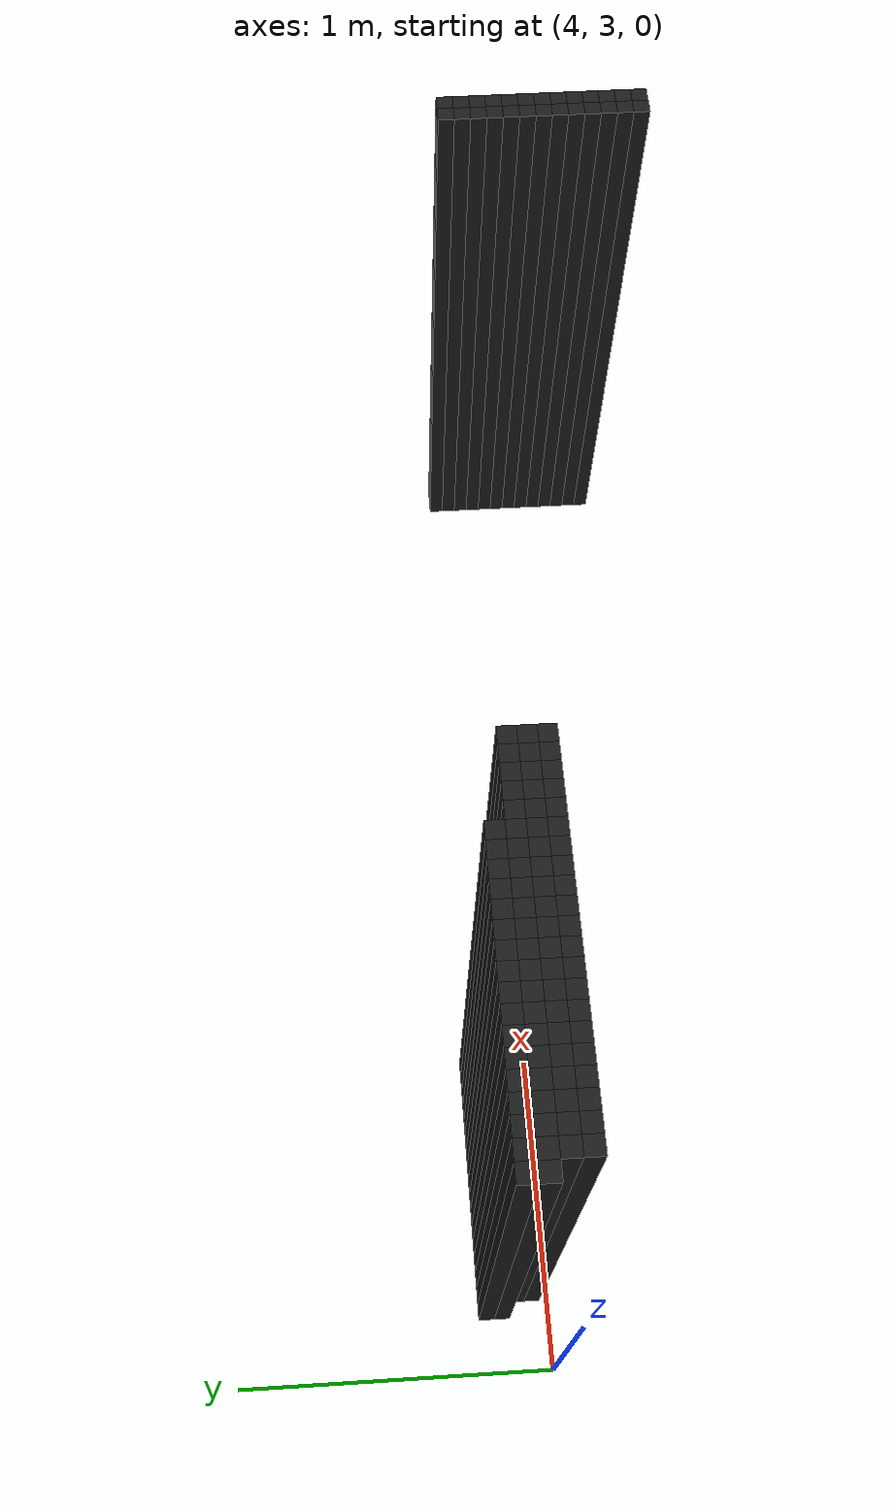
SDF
<sdf version="1.6">
 <model name="obstacle_174_103">
  <pose>4.190000000000001 3.2 1.0 0 0 0</pose>
  <static>true</static>
  <link name="box_link">
   <collision name="box_collision"><geometry><box><size>0.05 0.05 2.0</size></box></geometry></collision>
   <visual name="box_visual">
    <geometry><box><size>0.05 0.05 2.0</size></box></geometry>
    <material><ambient>0 0 0 1</ambient><diffuse>0.1 0.1 0.1 1</diffuse></material>
   </visual>
  </link>
 </model>
 <model name="obstacle_175_103">
  <pose>4.24 3.2 1.0 0 0 0</pose>
  <static>true</static>
  <link name="box_link">
   <collision name="box_collision"><geometry><box><size>0.05 0.05 2.0</size></box></geometry></collision>
   <visual name="box_visual">
    <geometry><box><size>0.05 0.05 2.0</size></box></geometry>
    <material><ambient>0 0 0 1</ambient><diffuse>0.1 0.1 0.1 1</diffuse></material>
   </visual>
  </link>
 </model>
 <model name="obstacle_176_103">
  <pose>4.290000000000001 3.2 1.0 0 0 0</pose>
  <static>true</static>
  <link name="box_link">
   <collision name="box_collision"><geometry><box><size>0.05 0.05 2.0</size></box></geometry></collision>
   <visual name="box_visual">
    <geometry><box><size>0.05 0.05 2.0</size></box></geometry>
    <material><ambient>0 0 0 1</ambient><diffuse>0.1 0.1 0.1 1</diffuse></material>
   </visual>
  </link>
 </model>
 <model name="obstacle_177_103">
  <pose>4.34 3.2 1.0 0 0 0</pose>
  <static>true</static>
  <link name="box_link">
   <collision name="box_collision"><geometry><box><size>0.05 0.05 2.0</size></box></geometry></collision>
   <visual name="box_visual">
    <geometry><box><size>0.05 0.05 2.0</size></box></geometry>
    <material><ambient>0 0 0 1</ambient><diffuse>0.1 0.1 0.1 1</diffuse></material>
   </visual>
  </link>
 </model>
 <model name="obstacle_178_103">
  <pose>4.390000000000001 3.2 1.0 0 0 0</pose>
  <static>true</static>
  <link name="box_link">
   <collision name="box_collision"><geometry><box><size>0.05 0.05 2.0</size></box></geometry></collision>
   <visual name="box_visual">
    <geometry><box><size>0.05 0.05 2.0</size></box></geometry>
    <material><ambient>0 0 0 1</ambient><diffuse>0.1 0.1 0.1 1</diffuse></material>
   </visual>
  </link>
 </model>
 <model name="obstacle_179_103">
  <pose>4.440000000000001 3.2 1.0 0 0 0</pose>
  <static>true</static>
  <link name="box_link">
   <collision name="box_collision"><geometry><box><size>0.05 0.05 2.0</size></box></geometry></collision>
   <visual name="box_visual">
    <geometry><box><size>0.05 0.05 2.0</size></box></geometry>
    <material><ambient>0 0 0 1</ambient><diffuse>0.1 0.1 0.1 1</diffuse></material>
   </visual>
  </link>
 </model>
 <model name="obstacle_180_103">
  <pose>4.49 3.2 1.0 0 0 0</pose>
  <static>true</static>
  <link name="box_link">
   <collision name="box_collision"><geometry><box><size>0.05 0.05 2.0</size></box></geometry></collision>
   <visual name="box_visual">
    <geometry><box><size>0.05 0.05 2.0</size></box></geometry>
    <material><ambient>0 0 0 1</ambient><diffuse>0.1 0.1 0.1 1</diffuse></material>
   </visual>
  </link>
 </model>
 <model name="obstacle_181_103">
  <pose>4.540000000000001 3.2 1.0 0 0 0</pose>
  <static>true</static>
  <link name="box_link">
   <collision name="box_collision"><geometry><box><size>0.05 0.05 2.0</size></box></geometry></collision>
   <visual name="box_visual">
    <geometry><box><size>0.05 0.05 2.0</size></box></geometry>
    <material><ambient>0 0 0 1</ambient><diffuse>0.1 0.1 0.1 1</diffuse></material>
   </visual>
  </link>
 </model>
 <model name="obstacle_182_103">
  <pose>4.59 3.2 1.0 0 0 0</pose>
  <static>true</static>
  <link name="box_link">
   <collision name="box_collision"><geometry><box><size>0.05 0.05 2.0</size></box></geometry></collision>
   <visual name="box_visual">
    <geometry><box><size>0.05 0.05 2.0</size></box></geometry>
    <material><ambient>0 0 0 1</ambient><diffuse>0.1 0.1 0.1 1</diffuse></material>
   </visual>
  </link>
 </model>
 <model name="obstacle_183_103">
  <pose>4.640000000000001 3.2 1.0 0 0 0</pose>
  <static>true</static>
  <link name="box_link">
   <collision name="box_collision"><geometry><box><size>0.05 0.05 2.0</size></box></geometry></collision>
   <visual name="box_visual">
    <geometry><box><size>0.05 0.05 2.0</size></box></geometry>
    <material><ambient>0 0 0 1</ambient><diffuse>0.1 0.1 0.1 1</diffuse></material>
   </visual>
  </link>
 </model>
 <model name="obstacle_184_103">
  <pose>4.690000000000001 3.2 1.0 0 0 0</pose>
  <static>true</static>
  <link name="box_link">
   <collision name="box_collision"><geometry><box><size>0.05 0.05 2.0</size></box></geometry></collision>
   <visual name="box_visual">
    <geometry><box><size>0.05 0.05 2.0</size></box></geometry>
    <material><ambient>0 0 0 1</ambient><diffuse>0.1 0.1 0.1 1</diffuse></material>
   </visual>
  </link>
 </model>
 <model name="obstacle_185_103">
  <pose>4.74 3.2 1.0 0 0 0</pose>
  <static>true</static>
  <link name="box_link">
   <collision name="box_collision"><geometry><box><size>0.05 0.05 2.0</size></box></geometry></collision>
   <visual name="box_visual">
    <geometry><box><size>0.05 0.05 2.0</size></box></geometry>
    <material><ambient>0 0 0 1</ambient><diffuse>0.1 0.1 0.1 1</diffuse></material>
   </visual>
  </link>
 </model>
 <model name="obstacle_186_103">
  <pose>4.790000000000001 3.2 1.0 0 0 0</pose>
  <static>true</static>
  <link name="box_link">
   <collision name="box_collision"><geometry><box><size>0.05 0.05 2.0</size></box></geometry></collision>
   <visual name="box_visual">
    <geometry><box><size>0.05 0.05 2.0</size></box></geometry>
    <material><ambient>0 0 0 1</ambient><diffuse>0.1 0.1 0.1 1</diffuse></material>
   </visual>
  </link>
 </model>
 <model name="obstacle_187_103">
  <pose>4.84 3.2 1.0 0 0 0</pose>
  <static>true</static>
  <link name="box_link">
   <collision name="box_collision"><geometry><box><size>0.05 0.05 2.0</size></box></geometry></collision>
   <visual name="box_visual">
    <geometry><box><size>0.05 0.05 2.0</size></box></geometry>
    <material><ambient>0 0 0 1</ambient><diffuse>0.1 0.1 0.1 1</diffuse></material>
   </visual>
  </link>
 </model>
 <model name="obstacle_188_103">
  <pose>4.890000000000001 3.2 1.0 0 0 0</pose>
  <static>true</static>
  <link name="box_link">
   <collision name="box_collision"><geometry><box><size>0.05 0.05 2.0</size></box></geometry></collision>
   <visual name="box_visual">
    <geometry><box><size>0.05 0.05 2.0</size></box></geometry>
    <material><ambient>0 0 0 1</ambient><diffuse>0.1 0.1 0.1 1</diffuse></material>
   </visual>
  </link>
 </model>
 <model name="obstacle_189_103">
  <pose>4.940000000000001 3.2 1.0 0 0 0</pose>
  <static>true</static>
  <link name="box_link">
   <collision name="box_collision"><geometry><box><size>0.05 0.05 2.0</size></box></geometry></collision>
   <visual name="box_visual">
    <geometry><box><size>0.05 0.05 2.0</size></box></geometry>
    <material><ambient>0 0 0 1</ambient><diffuse>0.1 0.1 0.1 1</diffuse></material>
   </visual>
  </link>
 </model>
 <model name="obstacle_190_103">
  <pose>4.99 3.2 1.0 0 0 0</pose>
  <static>true</static>
  <link name="box_link">
   <collision name="box_collision"><geometry><box><size>0.05 0.05 2.0</size></box></geometry></collision>
   <visual name="box_visual">
    <geometry><box><size>0.05 0.05 2.0</size></box></geometry>
    <material><ambient>0 0 0 1</ambient><diffuse>0.1 0.1 0.1 1</diffuse></material>
   </visual>
  </link>
 </model>
 <model name="obstacle_174_104">
  <pose>4.190000000000001 3.1500000000000004 1.0 0 0 0</pose>
  <static>true</static>
  <link name="box_link">
   <collision name="box_collision"><geometry><box><size>0.05 0.05 2.0</size></box></geometry></collision>
   <visual name="box_visual">
    <geometry><box><size>0.05 0.05 2.0</size></box></geometry>
    <material><ambient>0 0 0 1</ambient><diffuse>0.1 0.1 0.1 1</diffuse></material>
   </visual>
  </link>
 </model>
 <model name="obstacle_175_104">
  <pose>4.24 3.1500000000000004 1.0 0 0 0</pose>
  <static>true</static>
  <link name="box_link">
   <collision name="box_collision"><geometry><box><size>0.05 0.05 2.0</size></box></geometry></collision>
   <visual name="box_visual">
    <geometry><box><size>0.05 0.05 2.0</size></box></geometry>
    <material><ambient>0 0 0 1</ambient><diffuse>0.1 0.1 0.1 1</diffuse></material>
   </visual>
  </link>
 </model>
 <model name="obstacle_176_104">
  <pose>4.290000000000001 3.1500000000000004 1.0 0 0 0</pose>
  <static>true</static>
  <link name="box_link">
   <collision name="box_collision"><geometry><box><size>0.05 0.05 2.0</size></box></geometry></collision>
   <visual name="box_visual">
    <geometry><box><size>0.05 0.05 2.0</size></box></geometry>
    <material><ambient>0 0 0 1</ambient><diffuse>0.1 0.1 0.1 1</diffuse></material>
   </visual>
  </link>
 </model>
 <model name="obstacle_177_104">
  <pose>4.34 3.1500000000000004 1.0 0 0 0</pose>
  <static>true</static>
  <link name="box_link">
   <collision name="box_collision"><geometry><box><size>0.05 0.05 2.0</size></box></geometry></collision>
   <visual name="box_visual">
    <geometry><box><size>0.05 0.05 2.0</size></box></geometry>
    <material><ambient>0 0 0 1</ambient><diffuse>0.1 0.1 0.1 1</diffuse></material>
   </visual>
  </link>
 </model>
 <model name="obstacle_178_104">
  <pose>4.390000000000001 3.1500000000000004 1.0 0 0 0</pose>
  <static>true</static>
  <link name="box_link">
   <collision name="box_collision"><geometry><box><size>0.05 0.05 2.0</size></box></geometry></collision>
   <visual name="box_visual">
    <geometry><box><size>0.05 0.05 2.0</size></box></geometry>
    <material><ambient>0 0 0 1</ambient><diffuse>0.1 0.1 0.1 1</diffuse></material>
   </visual>
  </link>
 </model>
 <model name="obstacle_179_104">
  <pose>4.440000000000001 3.1500000000000004 1.0 0 0 0</pose>
  <static>true</static>
  <link name="box_link">
   <collision name="box_collision"><geometry><box><size>0.05 0.05 2.0</size></box></geometry></collision>
   <visual name="box_visual">
    <geometry><box><size>0.05 0.05 2.0</size></box></geometry>
    <material><ambient>0 0 0 1</ambient><diffuse>0.1 0.1 0.1 1</diffuse></material>
   </visual>
  </link>
 </model>
 <model name="obstacle_180_104">
  <pose>4.49 3.1500000000000004 1.0 0 0 0</pose>
  <static>true</static>
  <link name="box_link">
   <collision name="box_collision"><geometry><box><size>0.05 0.05 2.0</size></box></geometry></collision>
   <visual name="box_visual">
    <geometry><box><size>0.05 0.05 2.0</size></box></geometry>
    <material><ambient>0 0 0 1</ambient><diffuse>0.1 0.1 0.1 1</diffuse></material>
   </visual>
  </link>
 </model>
 <model name="obstacle_181_104">
  <pose>4.540000000000001 3.1500000000000004 1.0 0 0 0</pose>
  <static>true</static>
  <link name="box_link">
   <collision name="box_collision"><geometry><box><size>0.05 0.05 2.0</size></box></geometry></collision>
   <visual name="box_visual">
    <geometry><box><size>0.05 0.05 2.0</size></box></geometry>
    <material><ambient>0 0 0 1</ambient><diffuse>0.1 0.1 0.1 1</diffuse></material>
   </visual>
  </link>
 </model>
 <model name="obstacle_182_104">
  <pose>4.59 3.1500000000000004 1.0 0 0 0</pose>
  <static>true</static>
  <link name="box_link">
   <collision name="box_collision"><geometry><box><size>0.05 0.05 2.0</size></box></geometry></collision>
   <visual name="box_visual">
    <geometry><box><size>0.05 0.05 2.0</size></box></geometry>
    <material><ambient>0 0 0 1</ambient><diffuse>0.1 0.1 0.1 1</diffuse></material>
   </visual>
  </link>
 </model>
 <model name="obstacle_183_104">
  <pose>4.640000000000001 3.1500000000000004 1.0 0 0 0</pose>
  <static>true</static>
  <link name="box_link">
   <collision name="box_collision"><geometry><box><size>0.05 0.05 2.0</size></box></geometry></collision>
   <visual name="box_visual">
    <geometry><box><size>0.05 0.05 2.0</size></box></geometry>
    <material><ambient>0 0 0 1</ambient><diffuse>0.1 0.1 0.1 1</diffuse></material>
   </visual>
  </link>
 </model>
 <model name="obstacle_184_104">
  <pose>4.690000000000001 3.1500000000000004 1.0 0 0 0</pose>
  <static>true</static>
  <link name="box_link">
   <collision name="box_collision"><geometry><box><size>0.05 0.05 2.0</size></box></geometry></collision>
   <visual name="box_visual">
    <geometry><box><size>0.05 0.05 2.0</size></box></geometry>
    <material><ambient>0 0 0 1</ambient><diffuse>0.1 0.1 0.1 1</diffuse></material>
   </visual>
  </link>
 </model>
 <model name="obstacle_185_104">
  <pose>4.74 3.1500000000000004 1.0 0 0 0</pose>
  <static>true</static>
  <link name="box_link">
   <collision name="box_collision"><geometry><box><size>0.05 0.05 2.0</size></box></geometry></collision>
   <visual name="box_visual">
    <geometry><box><size>0.05 0.05 2.0</size></box></geometry>
    <material><ambient>0 0 0 1</ambient><diffuse>0.1 0.1 0.1 1</diffuse></material>
   </visual>
  </link>
 </model>
 <model name="obstacle_186_104">
  <pose>4.790000000000001 3.1500000000000004 1.0 0 0 0</pose>
  <static>true</static>
  <link name="box_link">
   <collision name="box_collision"><geometry><box><size>0.05 0.05 2.0</size></box></geometry></collision>
   <visual name="box_visual">
    <geometry><box><size>0.05 0.05 2.0</size></box></geometry>
    <material><ambient>0 0 0 1</ambient><diffuse>0.1 0.1 0.1 1</diffuse></material>
   </visual>
  </link>
 </model>
 <model name="obstacle_187_104">
  <pose>4.84 3.1500000000000004 1.0 0 0 0</pose>
  <static>true</static>
  <link name="box_link">
   <collision name="box_collision"><geometry><box><size>0.05 0.05 2.0</size></box></geometry></collision>
   <visual name="box_visual">
    <geometry><box><size>0.05 0.05 2.0</size></box></geometry>
    <material><ambient>0 0 0 1</ambient><diffuse>0.1 0.1 0.1 1</diffuse></material>
   </visual>
  </link>
 </model>
 <model name="obstacle_188_104">
  <pose>4.890000000000001 3.1500000000000004 1.0 0 0 0</pose>
  <static>true</static>
  <link name="box_link">
   <collision name="box_collision"><geometry><box><size>0.05 0.05 2.0</size></box></geometry></collision>
   <visual name="box_visual">
    <geometry><box><size>0.05 0.05 2.0</size></box></geometry>
    <material><ambient>0 0 0 1</ambient><diffuse>0.1 0.1 0.1 1</diffuse></material>
   </visual>
  </link>
 </model>
 <model name="obstacle_189_104">
  <pose>4.940000000000001 3.1500000000000004 1.0 0 0 0</pose>
  <static>true</static>
  <link name="box_link">
   <collision name="box_collision"><geometry><box><size>0.05 0.05 2.0</size></box></geometry></collision>
   <visual name="box_visual">
    <geometry><box><size>0.05 0.05 2.0</size></box></geometry>
    <material><ambient>0 0 0 1</ambient><diffuse>0.1 0.1 0.1 1</diffuse></material>
   </visual>
  </link>
 </model>
 <model name="obstacle_190_104">
  <pose>4.99 3.1500000000000004 1.0 0 0 0</pose>
  <static>true</static>
  <link name="box_link">
   <collision name="box_collision"><geometry><box><size>0.05 0.05 2.0</size></box></geometry></collision>
   <visual name="box_visual">
    <geometry><box><size>0.05 0.05 2.0</size></box></geometry>
    <material><ambient>0 0 0 1</ambient><diffuse>0.1 0.1 0.1 1</diffuse></material>
   </visual>
  </link>
 </model>
 <model name="obstacle_191_104">
  <pose>5.040000000000001 3.1500000000000004 1.0 0 0 0</pose>
  <static>true</static>
  <link name="box_link">
   <collision name="box_collision"><geometry><box><size>0.05 0.05 2.0</size></box></geometry></collision>
   <visual name="box_visual">
    <geometry><box><size>0.05 0.05 2.0</size></box></geometry>
    <material><ambient>0 0 0 1</ambient><diffuse>0.1 0.1 0.1 1</diffuse></material>
   </visual>
  </link>
 </model>
 <model name="obstacle_192_104">
  <pose>5.090000000000002 3.1500000000000004 1.0 0 0 0</pose>
  <static>true</static>
  <link name="box_link">
   <collision name="box_collision"><geometry><box><size>0.05 0.05 2.0</size></box></geometry></collision>
   <visual name="box_visual">
    <geometry><box><size>0.05 0.05 2.0</size></box></geometry>
    <material><ambient>0 0 0 1</ambient><diffuse>0.1 0.1 0.1 1</diffuse></material>
   </visual>
  </link>
 </model>
 <model name="obstacle_193_104">
  <pose>5.140000000000001 3.1500000000000004 1.0 0 0 0</pose>
  <static>true</static>
  <link name="box_link">
   <collision name="box_collision"><geometry><box><size>0.05 0.05 2.0</size></box></geometry></collision>
   <visual name="box_visual">
    <geometry><box><size>0.05 0.05 2.0</size></box></geometry>
    <material><ambient>0 0 0 1</ambient><diffuse>0.1 0.1 0.1 1</diffuse></material>
   </visual>
  </link>
 </model>
 <model name="obstacle_194_104">
  <pose>5.190000000000001 3.1500000000000004 1.0 0 0 0</pose>
  <static>true</static>
  <link name="box_link">
   <collision name="box_collision"><geometry><box><size>0.05 0.05 2.0</size></box></geometry></collision>
   <visual name="box_visual">
    <geometry><box><size>0.05 0.05 2.0</size></box></geometry>
    <material><ambient>0 0 0 1</ambient><diffuse>0.1 0.1 0.1 1</diffuse></material>
   </visual>
  </link>
 </model>
 <model name="obstacle_195_104">
  <pose>5.24 3.1500000000000004 1.0 0 0 0</pose>
  <static>true</static>
  <link name="box_link">
   <collision name="box_collision"><geometry><box><size>0.05 0.05 2.0</size></box></geometry></collision>
   <visual name="box_visual">
    <geometry><box><size>0.05 0.05 2.0</size></box></geometry>
    <material><ambient>0 0 0 1</ambient><diffuse>0.1 0.1 0.1 1</diffuse></material>
   </visual>
  </link>
 </model>
 <model name="obstacle_238_104">
  <pose>7.390000000000001 3.1500000000000004 1.0 0 0 0</pose>
  <static>true</static>
  <link name="box_link">
   <collision name="box_collision"><geometry><box><size>0.05 0.05 2.0</size></box></geometry></collision>
   <visual name="box_visual">
    <geometry><box><size>0.05 0.05 2.0</size></box></geometry>
    <material><ambient>0 0 0 1</ambient><diffuse>0.1 0.1 0.1 1</diffuse></material>
   </visual>
  </link>
 </model>
 <model name="obstacle_239_104">
  <pose>7.440000000000001 3.1500000000000004 1.0 0 0 0</pose>
  <static>true</static>
  <link name="box_link">
   <collision name="box_collision"><geometry><box><size>0.05 0.05 2.0</size></box></geometry></collision>
   <visual name="box_visual">
    <geometry><box><size>0.05 0.05 2.0</size></box></geometry>
    <material><ambient>0 0 0 1</ambient><diffuse>0.1 0.1 0.1 1</diffuse></material>
   </visual>
  </link>
 </model>
 <model name="obstacle_175_105">
  <pose>4.24 3.1000000000000005 1.0 0 0 0</pose>
  <static>true</static>
  <link name="box_link">
   <collision name="box_collision"><geometry><box><size>0.05 0.05 2.0</size></box></geometry></collision>
   <visual name="box_visual">
    <geometry><box><size>0.05 0.05 2.0</size></box></geometry>
    <material><ambient>0 0 0 1</ambient><diffuse>0.1 0.1 0.1 1</diffuse></material>
   </visual>
  </link>
 </model>
 <model name="obstacle_176_105">
  <pose>4.290000000000001 3.1000000000000005 1.0 0 0 0</pose>
  <static>true</static>
  <link name="box_link">
   <collision name="box_collision"><geometry><box><size>0.05 0.05 2.0</size></box></geometry></collision>
   <visual name="box_visual">
    <geometry><box><size>0.05 0.05 2.0</size></box></geometry>
    <material><ambient>0 0 0 1</ambient><diffuse>0.1 0.1 0.1 1</diffuse></material>
   </visual>
  </link>
 </model>
 <model name="obstacle_177_105">
  <pose>4.34 3.1000000000000005 1.0 0 0 0</pose>
  <static>true</static>
  <link name="box_link">
   <collision name="box_collision"><geometry><box><size>0.05 0.05 2.0</size></box></geometry></collision>
   <visual name="box_visual">
    <geometry><box><size>0.05 0.05 2.0</size></box></geometry>
    <material><ambient>0 0 0 1</ambient><diffuse>0.1 0.1 0.1 1</diffuse></material>
   </visual>
  </link>
 </model>
 <model name="obstacle_178_105">
  <pose>4.390000000000001 3.1000000000000005 1.0 0 0 0</pose>
  <static>true</static>
  <link name="box_link">
   <collision name="box_collision"><geometry><box><size>0.05 0.05 2.0</size></box></geometry></collision>
   <visual name="box_visual">
    <geometry><box><size>0.05 0.05 2.0</size></box></geometry>
    <material><ambient>0 0 0 1</ambient><diffuse>0.1 0.1 0.1 1</diffuse></material>
   </visual>
  </link>
 </model>
 <model name="obstacle_179_105">
  <pose>4.440000000000001 3.1000000000000005 1.0 0 0 0</pose>
  <static>true</static>
  <link name="box_link">
   <collision name="box_collision"><geometry><box><size>0.05 0.05 2.0</size></box></geometry></collision>
   <visual name="box_visual">
    <geometry><box><size>0.05 0.05 2.0</size></box></geometry>
    <material><ambient>0 0 0 1</ambient><diffuse>0.1 0.1 0.1 1</diffuse></material>
   </visual>
  </link>
 </model>
 <model name="obstacle_180_105">
  <pose>4.49 3.1000000000000005 1.0 0 0 0</pose>
  <static>true</static>
  <link name="box_link">
   <collision name="box_collision"><geometry><box><size>0.05 0.05 2.0</size></box></geometry></collision>
   <visual name="box_visual">
    <geometry><box><size>0.05 0.05 2.0</size></box></geometry>
    <material><ambient>0 0 0 1</ambient><diffuse>0.1 0.1 0.1 1</diffuse></material>
   </visual>
  </link>
 </model>
 <model name="obstacle_181_105">
  <pose>4.540000000000001 3.1000000000000005 1.0 0 0 0</pose>
  <static>true</static>
  <link name="box_link">
   <collision name="box_collision"><geometry><box><size>0.05 0.05 2.0</size></box></geometry></collision>
   <visual name="box_visual">
    <geometry><box><size>0.05 0.05 2.0</size></box></geometry>
    <material><ambient>0 0 0 1</ambient><diffuse>0.1 0.1 0.1 1</diffuse></material>
   </visual>
  </link>
 </model>
 <model name="obstacle_182_105">
  <pose>4.59 3.1000000000000005 1.0 0 0 0</pose>
  <static>true</static>
  <link name="box_link">
   <collision name="box_collision"><geometry><box><size>0.05 0.05 2.0</size></box></geometry></collision>
   <visual name="box_visual">
    <geometry><box><size>0.05 0.05 2.0</size></box></geometry>
    <material><ambient>0 0 0 1</ambient><diffuse>0.1 0.1 0.1 1</diffuse></material>
   </visual>
  </link>
 </model>
 <model name="obstacle_183_105">
  <pose>4.640000000000001 3.1000000000000005 1.0 0 0 0</pose>
  <static>true</static>
  <link name="box_link">
   <collision name="box_collision"><geometry><box><size>0.05 0.05 2.0</size></box></geometry></collision>
   <visual name="box_visual">
    <geometry><box><size>0.05 0.05 2.0</size></box></geometry>
    <material><ambient>0 0 0 1</ambient><diffuse>0.1 0.1 0.1 1</diffuse></material>
   </visual>
  </link>
 </model>
 <model name="obstacle_184_105">
  <pose>4.690000000000001 3.1000000000000005 1.0 0 0 0</pose>
  <static>true</static>
  <link name="box_link">
   <collision name="box_collision"><geometry><box><size>0.05 0.05 2.0</size></box></geometry></collision>
   <visual name="box_visual">
    <geometry><box><size>0.05 0.05 2.0</size></box></geometry>
    <material><ambient>0 0 0 1</ambient><diffuse>0.1 0.1 0.1 1</diffuse></material>
   </visual>
  </link>
 </model>
 <model name="obstacle_185_105">
  <pose>4.74 3.1000000000000005 1.0 0 0 0</pose>
  <static>true</static>
  <link name="box_link">
   <collision name="box_collision"><geometry><box><size>0.05 0.05 2.0</size></box></geometry></collision>
   <visual name="box_visual">
    <geometry><box><size>0.05 0.05 2.0</size></box></geometry>
    <material><ambient>0 0 0 1</ambient><diffuse>0.1 0.1 0.1 1</diffuse></material>
   </visual>
  </link>
 </model>
 <model name="obstacle_186_105">
  <pose>4.790000000000001 3.1000000000000005 1.0 0 0 0</pose>
  <static>true</static>
  <link name="box_link">
   <collision name="box_collision"><geometry><box><size>0.05 0.05 2.0</size></box></geometry></collision>
   <visual name="box_visual">
    <geometry><box><size>0.05 0.05 2.0</size></box></geometry>
    <material><ambient>0 0 0 1</ambient><diffuse>0.1 0.1 0.1 1</diffuse></material>
   </visual>
  </link>
 </model>
 <model name="obstacle_187_105">
  <pose>4.84 3.1000000000000005 1.0 0 0 0</pose>
  <static>true</static>
  <link name="box_link">
   <collision name="box_collision"><geometry><box><size>0.05 0.05 2.0</size></box></geometry></collision>
   <visual name="box_visual">
    <geometry><box><size>0.05 0.05 2.0</size></box></geometry>
    <material><ambient>0 0 0 1</ambient><diffuse>0.1 0.1 0.1 1</diffuse></material>
   </visual>
  </link>
 </model>
 <model name="obstacle_188_105">
  <pose>4.890000000000001 3.1000000000000005 1.0 0 0 0</pose>
  <static>true</static>
  <link name="box_link">
   <collision name="box_collision"><geometry><box><size>0.05 0.05 2.0</size></box></geometry></collision>
   <visual name="box_visual">
    <geometry><box><size>0.05 0.05 2.0</size></box></geometry>
    <material><ambient>0 0 0 1</ambient><diffuse>0.1 0.1 0.1 1</diffuse></material>
   </visual>
  </link>
 </model>
 <model name="obstacle_189_105">
  <pose>4.940000000000001 3.1000000000000005 1.0 0 0 0</pose>
  <static>true</static>
  <link name="box_link">
   <collision name="box_collision"><geometry><box><size>0.05 0.05 2.0</size></box></geometry></collision>
   <visual name="box_visual">
    <geometry><box><size>0.05 0.05 2.0</size></box></geometry>
    <material><ambient>0 0 0 1</ambient><diffuse>0.1 0.1 0.1 1</diffuse></material>
   </visual>
  </link>
 </model>
 <model name="obstacle_190_105">
  <pose>4.99 3.1000000000000005 1.0 0 0 0</pose>
  <static>true</static>
  <link name="box_link">
   <collision name="box_collision"><geometry><box><size>0.05 0.05 2.0</size></box></geometry></collision>
   <visual name="box_visual">
    <geometry><box><size>0.05 0.05 2.0</size></box></geometry>
    <material><ambient>0 0 0 1</ambient><diffuse>0.1 0.1 0.1 1</diffuse></material>
   </visual>
  </link>
 </model>
 <model name="obstacle_191_105">
  <pose>5.040000000000001 3.1000000000000005 1.0 0 0 0</pose>
  <static>true</static>
  <link name="box_link">
   <collision name="box_collision"><geometry><box><size>0.05 0.05 2.0</size></box></geometry></collision>
   <visual name="box_visual">
    <geometry><box><size>0.05 0.05 2.0</size></box></geometry>
    <material><ambient>0 0 0 1</ambient><diffuse>0.1 0.1 0.1 1</diffuse></material>
   </visual>
  </link>
 </model>
 <model name="obstacle_192_105">
  <pose>5.090000000000002 3.1000000000000005 1.0 0 0 0</pose>
  <static>true</static>
  <link name="box_link">
   <collision name="box_collision"><geometry><box><size>0.05 0.05 2.0</size></box></geometry></collision>
   <visual name="box_visual">
    <geometry><box><size>0.05 0.05 2.0</size></box></geometry>
    <material><ambient>0 0 0 1</ambient><diffuse>0.1 0.1 0.1 1</diffuse></material>
   </visual>
  </link>
 </model>
 <model name="obstacle_193_105">
  <pose>5.140000000000001 3.1000000000000005 1.0 0 0 0</pose>
  <static>true</static>
  <link name="box_link">
   <collision name="box_collision"><geometry><box><size>0.05 0.05 2.0</size></box></geometry></collision>
   <visual name="box_visual">
    <geometry><box><size>0.05 0.05 2.0</size></box></geometry>
    <material><ambient>0 0 0 1</ambient><diffuse>0.1 0.1 0.1 1</diffuse></material>
   </visual>
  </link>
 </model>
 <model name="obstacle_194_105">
  <pose>5.190000000000001 3.1000000000000005 1.0 0 0 0</pose>
  <static>true</static>
  <link name="box_link">
   <collision name="box_collision"><geometry><box><size>0.05 0.05 2.0</size></box></geometry></collision>
   <visual name="box_visual">
    <geometry><box><size>0.05 0.05 2.0</size></box></geometry>
    <material><ambient>0 0 0 1</ambient><diffuse>0.1 0.1 0.1 1</diffuse></material>
   </visual>
  </link>
 </model>
 <model name="obstacle_195_105">
  <pose>5.24 3.1000000000000005 1.0 0 0 0</pose>
  <static>true</static>
  <link name="box_link">
   <collision name="box_collision"><geometry><box><size>0.05 0.05 2.0</size></box></geometry></collision>
   <visual name="box_visual">
    <geometry><box><size>0.05 0.05 2.0</size></box></geometry>
    <material><ambient>0 0 0 1</ambient><diffuse>0.1 0.1 0.1 1</diffuse></material>
   </visual>
  </link>
 </model>
 <model name="obstacle_238_105">
  <pose>7.390000000000001 3.1000000000000005 1.0 0 0 0</pose>
  <static>true</static>
  <link name="box_link">
   <collision name="box_collision"><geometry><box><size>0.05 0.05 2.0</size></box></geometry></collision>
   <visual name="box_visual">
    <geometry><box><size>0.05 0.05 2.0</size></box></geometry>
    <material><ambient>0 0 0 1</ambient><diffuse>0.1 0.1 0.1 1</diffuse></material>
   </visual>
  </link>
 </model>
 <model name="obstacle_239_105">
  <pose>7.440000000000001 3.1000000000000005 1.0 0 0 0</pose>
  <static>true</static>
  <link name="box_link">
   <collision name="box_collision"><geometry><box><size>0.05 0.05 2.0</size></box></geometry></collision>
   <visual name="box_visual">
    <geometry><box><size>0.05 0.05 2.0</size></box></geometry>
    <material><ambient>0 0 0 1</ambient><diffuse>0.1 0.1 0.1 1</diffuse></material>
   </visual>
  </link>
 </model>
 <model name="obstacle_175_106">
  <pose>4.24 3.05 1.0 0 0 0</pose>
  <static>true</static>
  <link name="box_link">
   <collision name="box_collision"><geometry><box><size>0.05 0.05 2.0</size></box></geometry></collision>
   <visual name="box_visual">
    <geometry><box><size>0.05 0.05 2.0</size></box></geometry>
    <material><ambient>0 0 0 1</ambient><diffuse>0.1 0.1 0.1 1</diffuse></material>
   </visual>
  </link>
 </model>
 <model name="obstacle_176_106">
  <pose>4.290000000000001 3.05 1.0 0 0 0</pose>
  <static>true</static>
  <link name="box_link">
   <collision name="box_collision"><geometry><box><size>0.05 0.05 2.0</size></box></geometry></collision>
   <visual name="box_visual">
    <geometry><box><size>0.05 0.05 2.0</size></box></geometry>
    <material><ambient>0 0 0 1</ambient><diffuse>0.1 0.1 0.1 1</diffuse></material>
   </visual>
  </link>
 </model>
 <model name="obstacle_177_106">
  <pose>4.34 3.05 1.0 0 0 0</pose>
  <static>true</static>
  <link name="box_link">
   <collision name="box_collision"><geometry><box><size>0.05 0.05 2.0</size></box></geometry></collision>
   <visual name="box_visual">
    <geometry><box><size>0.05 0.05 2.0</size></box></geometry>
    <material><ambient>0 0 0 1</ambient><diffuse>0.1 0.1 0.1 1</diffuse></material>
   </visual>
  </link>
 </model>
 <model name="obstacle_178_106">
  <pose>4.390000000000001 3.05 1.0 0 0 0</pose>
  <static>true</static>
  <link name="box_link">
   <collision name="box_collision"><geometry><box><size>0.05 0.05 2.0</size></box></geometry></collision>
   <visual name="box_visual">
    <geometry><box><size>0.05 0.05 2.0</size></box></geometry>
    <material><ambient>0 0 0 1</ambient><diffuse>0.1 0.1 0.1 1</diffuse></material>
   </visual>
  </link>
 </model>
 <model name="obstacle_179_106">
  <pose>4.440000000000001 3.05 1.0 0 0 0</pose>
  <static>true</static>
  <link name="box_link">
   <collision name="box_collision"><geometry><box><size>0.05 0.05 2.0</size></box></geometry></collision>
   <visual name="box_visual">
    <geometry><box><size>0.05 0.05 2.0</size></box></geometry>
    <material><ambient>0 0 0 1</ambient><diffuse>0.1 0.1 0.1 1</diffuse></material>
   </visual>
  </link>
 </model>
 <model name="obstacle_180_106">
  <pose>4.49 3.05 1.0 0 0 0</pose>
  <static>true</static>
  <link name="box_link">
   <collision name="box_collision"><geometry><box><size>0.05 0.05 2.0</size></box></geometry></collision>
   <visual name="box_visual">
    <geometry><box><size>0.05 0.05 2.0</size></box></geometry>
    <material><ambient>0 0 0 1</ambient><diffuse>0.1 0.1 0.1 1</diffuse></material>
   </visual>
  </link>
 </model>
 <model name="obstacle_181_106">
  <pose>4.540000000000001 3.05 1.0 0 0 0</pose>
  <static>true</static>
  <link name="box_link">
   <collision name="box_collision"><geometry><box><size>0.05 0.05 2.0</size></box></geometry></collision>
   <visual name="box_visual">
    <geometry><box><size>0.05 0.05 2.0</size></box></geometry>
    <material><ambient>0 0 0 1</ambient><diffuse>0.1 0.1 0.1 1</diffuse></material>
   </visual>
  </link>
 </model>
 <model name="obstacle_182_106">
  <pose>4.59 3.05 1.0 0 0 0</pose>
  <static>true</static>
  <link name="box_link">
   <collision name="box_collision"><geometry><box><size>0.05 0.05 2.0</size></box></geometry></collision>
   <visual name="box_visual">
    <geometry><box><size>0.05 0.05 2.0</size></box></geometry>
    <material><ambient>0 0 0 1</ambient><diffuse>0.1 0.1 0.1 1</diffuse></material>
   </visual>
  </link>
 </model>
 <model name="obstacle_183_106">
  <pose>4.640000000000001 3.05 1.0 0 0 0</pose>
  <static>true</static>
  <link name="box_link">
   <collision name="box_collision"><geometry><box><size>0.05 0.05 2.0</size></box></geometry></collision>
   <visual name="box_visual">
    <geometry><box><size>0.05 0.05 2.0</size></box></geometry>
    <material><ambient>0 0 0 1</ambient><diffuse>0.1 0.1 0.1 1</diffuse></material>
   </visual>
  </link>
 </model>
 <model name="obstacle_184_106">
  <pose>4.690000000000001 3.05 1.0 0 0 0</pose>
  <static>true</static>
  <link name="box_link">
   <collision name="box_collision"><geometry><box><size>0.05 0.05 2.0</size></box></geometry></collision>
   <visual name="box_visual">
    <geometry><box><size>0.05 0.05 2.0</size></box></geometry>
    <material><ambient>0 0 0 1</ambient><diffuse>0.1 0.1 0.1 1</diffuse></material>
   </visual>
  </link>
 </model>
 <model name="obstacle_185_106">
  <pose>4.74 3.05 1.0 0 0 0</pose>
  <static>true</static>
  <link name="box_link">
   <collision name="box_collision"><geometry><box><size>0.05 0.05 2.0</size></box></geometry></collision>
   <visual name="box_visual">
    <geometry><box><size>0.05 0.05 2.0</size></box></geometry>
    <material><ambient>0 0 0 1</ambient><diffuse>0.1 0.1 0.1 1</diffuse></material>
   </visual>
  </link>
 </model>
 <model name="obstacle_186_106">
  <pose>4.790000000000001 3.05 1.0 0 0 0</pose>
  <static>true</static>
  <link name="box_link">
   <collision name="box_collision"><geometry><box><size>0.05 0.05 2.0</size></box></geometry></collision>
   <visual name="box_visual">
    <geometry><box><size>0.05 0.05 2.0</size></box></geometry>
    <material><ambient>0 0 0 1</ambient><diffuse>0.1 0.1 0.1 1</diffuse></material>
   </visual>
  </link>
 </model>
 <model name="obstacle_187_106">
  <pose>4.84 3.05 1.0 0 0 0</pose>
  <static>true</static>
  <link name="box_link">
   <collision name="box_collision"><geometry><box><size>0.05 0.05 2.0</size></box></geometry></collision>
   <visual name="box_visual">
    <geometry><box><size>0.05 0.05 2.0</size></box></geometry>
    <material><ambient>0 0 0 1</ambient><diffuse>0.1 0.1 0.1 1</diffuse></material>
   </visual>
  </link>
 </model>
 <model name="obstacle_188_106">
  <pose>4.890000000000001 3.05 1.0 0 0 0</pose>
  <static>true</static>
  <link name="box_link">
   <collision name="box_collision"><geometry><box><size>0.05 0.05 2.0</size></box></geometry></collision>
   <visual name="box_visual">
    <geometry><box><size>0.05 0.05 2.0</size></box></geometry>
    <material><ambient>0 0 0 1</ambient><diffuse>0.1 0.1 0.1 1</diffuse></material>
   </visual>
  </link>
 </model>
 <model name="obstacle_189_106">
  <pose>4.940000000000001 3.05 1.0 0 0 0</pose>
  <static>true</static>
  <link name="box_link">
   <collision name="box_collision"><geometry><box><size>0.05 0.05 2.0</size></box></geometry></collision>
   <visual name="box_visual">
    <geometry><box><size>0.05 0.05 2.0</size></box></geometry>
    <material><ambient>0 0 0 1</ambient><diffuse>0.1 0.1 0.1 1</diffuse></material>
   </visual>
  </link>
 </model>
 <model name="obstacle_190_106">
  <pose>4.99 3.05 1.0 0 0 0</pose>
  <static>true</static>
  <link name="box_link">
   <collision name="box_collision"><geometry><box><size>0.05 0.05 2.0</size></box></geometry></collision>
   <visual name="box_visual">
    <geometry><box><size>0.05 0.05 2.0</size></box></geometry>
    <material><ambient>0 0 0 1</ambient><diffuse>0.1 0.1 0.1 1</diffuse></material>
   </visual>
  </link>
 </model>
 <model name="obstacle_191_106">
  <pose>5.040000000000001 3.05 1.0 0 0 0</pose>
  <static>true</static>
  <link name="box_link">
   <collision name="box_collision"><geometry><box><size>0.05 0.05 2.0</size></box></geometry></collision>
   <visual name="box_visual">
    <geometry><box><size>0.05 0.05 2.0</size></box></geometry>
    <material><ambient>0 0 0 1</ambient><diffuse>0.1 0.1 0.1 1</diffuse></material>
   </visual>
  </link>
 </model>
 <model name="obstacle_192_106">
  <pose>5.090000000000002 3.05 1.0 0 0 0</pose>
  <static>true</static>
  <link name="box_link">
   <collision name="box_collision"><geometry><box><size>0.05 0.05 2.0</size></box></geometry></collision>
   <visual name="box_visual">
    <geometry><box><size>0.05 0.05 2.0</size></box></geometry>
    <material><ambient>0 0 0 1</ambient><diffuse>0.1 0.1 0.1 1</diffuse></material>
   </visual>
  </link>
 </model>
 <model name="obstacle_193_106">
  <pose>5.140000000000001 3.05 1.0 0 0 0</pose>
  <static>true</static>
  <link name="box_link">
   <collision name="box_collision"><geometry><box><size>0.05 0.05 2.0</size></box></geometry></collision>
   <visual name="box_visual">
    <geometry><box><size>0.05 0.05 2.0</size></box></geometry>
    <material><ambient>0 0 0 1</ambient><diffuse>0.1 0.1 0.1 1</diffuse></material>
   </visual>
  </link>
 </model>
 <model name="obstacle_194_106">
  <pose>5.190000000000001 3.05 1.0 0 0 0</pose>
  <static>true</static>
  <link name="box_link">
   <collision name="box_collision"><geometry><box><size>0.05 0.05 2.0</size></box></geometry></collision>
   <visual name="box_visual">
    <geometry><box><size>0.05 0.05 2.0</size></box></geometry>
    <material><ambient>0 0 0 1</ambient><diffuse>0.1 0.1 0.1 1</diffuse></material>
   </visual>
  </link>
 </model>
 <model name="obstacle_195_106">
  <pose>5.24 3.05 1.0 0 0 0</pose>
  <static>true</static>
  <link name="box_link">
   <collision name="box_collision"><geometry><box><size>0.05 0.05 2.0</size></box></geometry></collision>
   <visual name="box_visual">
    <geometry><box><size>0.05 0.05 2.0</size></box></geometry>
    <material><ambient>0 0 0 1</ambient><diffuse>0.1 0.1 0.1 1</diffuse></material>
   </visual>
  </link>
 </model>
 <model name="obstacle_238_106">
  <pose>7.390000000000001 3.05 1.0 0 0 0</pose>
  <static>true</static>
  <link name="box_link">
   <collision name="box_collision"><geometry><box><size>0.05 0.05 2.0</size></box></geometry></collision>
   <visual name="box_visual">
    <geometry><box><size>0.05 0.05 2.0</size></box></geometry>
    <material><ambient>0 0 0 1</ambient><diffuse>0.1 0.1 0.1 1</diffuse></material>
   </visual>
  </link>
 </model>
 <model name="obstacle_239_106">
  <pose>7.440000000000001 3.05 1.0 0 0 0</pose>
  <static>true</static>
  <link name="box_link">
   <collision name="box_collision"><geometry><box><size>0.05 0.05 2.0</size></box></geometry></collision>
   <visual name="box_visual">
    <geometry><box><size>0.05 0.05 2.0</size></box></geometry>
    <material><ambient>0 0 0 1</ambient><diffuse>0.1 0.1 0.1 1</diffuse></material>
   </visual>
  </link>
 </model>
 <model name="obstacle_238_107">
  <pose>7.390000000000001 3.0 1.0 0 0 0</pose>
  <static>true</static>
  <link name="box_link">
   <collision name="box_collision"><geometry><box><size>0.05 0.05 2.0</size></box></geometry></collision>
   <visual name="box_visual">
    <geometry><box><size>0.05 0.05 2.0</size></box></geometry>
    <material><ambient>0 0 0 1</ambient><diffuse>0.1 0.1 0.1 1</diffuse></material>
   </visual>
  </link>
 </model>
 <model name="obstacle_239_107">
  <pose>7.440000000000001 3.0 1.0 0 0 0</pose>
  <static>true</static>
  <link name="box_link">
   <collision name="box_collision"><geometry><box><size>0.05 0.05 2.0</size></box></geometry></collision>
   <visual name="box_visual">
    <geometry><box><size>0.05 0.05 2.0</size></box></geometry>
    <material><ambient>0 0 0 1</ambient><diffuse>0.1 0.1 0.1 1</diffuse></material>
   </visual>
  </link>
 </model>
 <model name="obstacle_238_108">
  <pose>7.390000000000001 2.95 1.0 0 0 0</pose>
  <static>true</static>
  <link name="box_link">
   <collision name="box_collision"><geometry><box><size>0.05 0.05 2.0</size></box></geometry></collision>
   <visual name="box_visual">
    <geometry><box><size>0.05 0.05 2.0</size></box></geometry>
    <material><ambient>0 0 0 1</ambient><diffuse>0.1 0.1 0.1 1</diffuse></material>
   </visual>
  </link>
 </model>
 <model name="obstacle_239_108">
  <pose>7.440000000000001 2.95 1.0 0 0 0</pose>
  <static>true</static>
  <link name="box_link">
   <collision name="box_collision"><geometry><box><size>0.05 0.05 2.0</size></box></geometry></collision>
   <visual name="box_visual">
    <geometry><box><size>0.05 0.05 2.0</size></box></geometry>
    <material><ambient>0 0 0 1</ambient><diffuse>0.1 0.1 0.1 1</diffuse></material>
   </visual>
  </link>
 </model>
 <model name="obstacle_238_109">
  <pose>7.390000000000001 2.9000000000000004 1.0 0 0 0</pose>
  <static>true</static>
  <link name="box_link">
   <collision name="box_collision"><geometry><box><size>0.05 0.05 2.0</size></box></geometry></collision>
   <visual name="box_visual">
    <geometry><box><size>0.05 0.05 2.0</size></box></geometry>
    <material><ambient>0 0 0 1</ambient><diffuse>0.1 0.1 0.1 1</diffuse></material>
   </visual>
  </link>
 </model>
 <model name="obstacle_239_109">
  <pose>7.440000000000001 2.9000000000000004 1.0 0 0 0</pose>
  <static>true</static>
  <link name="box_link">
   <collision name="box_collision"><geometry><box><size>0.05 0.05 2.0</size></box></geometry></collision>
   <visual name="box_visual">
    <geometry><box><size>0.05 0.05 2.0</size></box></geometry>
    <material><ambient>0 0 0 1</ambient><diffuse>0.1 0.1 0.1 1</diffuse></material>
   </visual>
  </link>
 </model>
 <model name="obstacle_238_110">
  <pose>7.390000000000001 2.8500000000000005 1.0 0 0 0</pose>
  <static>true</static>
  <link name="box_link">
   <collision name="box_collision"><geometry><box><size>0.05 0.05 2.0</size></box></geometry></collision>
   <visual name="box_visual">
    <geometry><box><size>0.05 0.05 2.0</size></box></geometry>
    <material><ambient>0 0 0 1</ambient><diffuse>0.1 0.1 0.1 1</diffuse></material>
   </visual>
  </link>
 </model>
 <model name="obstacle_239_110">
  <pose>7.440000000000001 2.8500000000000005 1.0 0 0 0</pose>
  <static>true</static>
  <link name="box_link">
   <collision name="box_collision"><geometry><box><size>0.05 0.05 2.0</size></box></geometry></collision>
   <visual name="box_visual">
    <geometry><box><size>0.05 0.05 2.0</size></box></geometry>
    <material><ambient>0 0 0 1</ambient><diffuse>0.1 0.1 0.1 1</diffuse></material>
   </visual>
  </link>
 </model>
 <model name="obstacle_238_111">
  <pose>7.390000000000001 2.8 1.0 0 0 0</pose>
  <static>true</static>
  <link name="box_link">
   <collision name="box_collision"><geometry><box><size>0.05 0.05 2.0</size></box></geometry></collision>
   <visual name="box_visual">
    <geometry><box><size>0.05 0.05 2.0</size></box></geometry>
    <material><ambient>0 0 0 1</ambient><diffuse>0.1 0.1 0.1 1</diffuse></material>
   </visual>
  </link>
 </model>
 <model name="obstacle_239_111">
  <pose>7.440000000000001 2.8 1.0 0 0 0</pose>
  <static>true</static>
  <link name="box_link">
   <collision name="box_collision"><geometry><box><size>0.05 0.05 2.0</size></box></geometry></collision>
   <visual name="box_visual">
    <geometry><box><size>0.05 0.05 2.0</size></box></geometry>
    <material><ambient>0 0 0 1</ambient><diffuse>0.1 0.1 0.1 1</diffuse></material>
   </visual>
  </link>
 </model>
 <model name="obstacle_238_112">
  <pose>7.390000000000001 2.75 1.0 0 0 0</pose>
  <static>true</static>
  <link name="box_link">
   <collision name="box_collision"><geometry><box><size>0.05 0.05 2.0</size></box></geometry></collision>
   <visual name="box_visual">
    <geometry><box><size>0.05 0.05 2.0</size></box></geometry>
    <material><ambient>0 0 0 1</ambient><diffuse>0.1 0.1 0.1 1</diffuse></material>
   </visual>
  </link>
 </model>
 <model name="obstacle_239_112">
  <pose>7.440000000000001 2.75 1.0 0 0 0</pose>
  <static>true</static>
  <link name="box_link">
   <collision name="box_collision"><geometry><box><size>0.05 0.05 2.0</size></box></geometry></collision>
   <visual name="box_visual">
    <geometry><box><size>0.05 0.05 2.0</size></box></geometry>
    <material><ambient>0 0 0 1</ambient><diffuse>0.1 0.1 0.1 1</diffuse></material>
   </visual>
  </link>
 </model>
 <model name="obstacle_238_113">
  <pose>7.390000000000001 2.7 1.0 0 0 0</pose>
  <static>true</static>
  <link name="box_link">
   <collision name="box_collision"><geometry><box><size>0.05 0.05 2.0</size></box></geometry></collision>
   <visual name="box_visual">
    <geometry><box><size>0.05 0.05 2.0</size></box></geometry>
    <material><ambient>0 0 0 1</ambient><diffuse>0.1 0.1 0.1 1</diffuse></material>
   </visual>
  </link>
 </model>
 <model name="obstacle_239_113">
  <pose>7.440000000000001 2.7 1.0 0 0 0</pose>
  <static>true</static>
  <link name="box_link">
   <collision name="box_collision"><geometry><box><size>0.05 0.05 2.0</size></box></geometry></collision>
   <visual name="box_visual">
    <geometry><box><size>0.05 0.05 2.0</size></box></geometry>
    <material><ambient>0 0 0 1</ambient><diffuse>0.1 0.1 0.1 1</diffuse></material>
   </visual>
  </link>
 </model>
 <model name="obstacle_238_114">
  <pose>7.390000000000001 2.6500000000000004 1.0 0 0 0</pose>
  <static>true</static>
  <link name="box_link">
   <collision name="box_collision"><geometry><box><size>0.05 0.05 2.0</size></box></geometry></collision>
   <visual name="box_visual">
    <geometry><box><size>0.05 0.05 2.0</size></box></geometry>
    <material><ambient>0 0 0 1</ambient><diffuse>0.1 0.1 0.1 1</diffuse></material>
   </visual>
  </link>
 </model>
 <model name="obstacle_239_114">
  <pose>7.440000000000001 2.6500000000000004 1.0 0 0 0</pose>
  <static>true</static>
  <link name="box_link">
   <collision name="box_collision"><geometry><box><size>0.05 0.05 2.0</size></box></geometry></collision>
   <visual name="box_visual">
    <geometry><box><size>0.05 0.05 2.0</size></box></geometry>
    <material><ambient>0 0 0 1</ambient><diffuse>0.1 0.1 0.1 1</diffuse></material>
   </visual>
  </link>
 </model>
 <model name="obstacle_238_115">
  <pose>7.390000000000001 2.6000000000000005 1.0 0 0 0</pose>
  <static>true</static>
  <link name="box_link">
   <collision name="box_collision"><geometry><box><size>0.05 0.05 2.0</size></box></geometry></collision>
   <visual name="box_visual">
    <geometry><box><size>0.05 0.05 2.0</size></box></geometry>
    <material><ambient>0 0 0 1</ambient><diffuse>0.1 0.1 0.1 1</diffuse></material>
   </visual>
  </link>
 </model>
 <model name="obstacle_239_115">
  <pose>7.440000000000001 2.6000000000000005 1.0 0 0 0</pose>
  <static>true</static>
  <link name="box_link">
   <collision name="box_collision"><geometry><box><size>0.05 0.05 2.0</size></box></geometry></collision>
   <visual name="box_visual">
    <geometry><box><size>0.05 0.05 2.0</size></box></geometry>
    <material><ambient>0 0 0 1</ambient><diffuse>0.1 0.1 0.1 1</diffuse></material>
   </visual>
  </link>
 </model>
 <model name="obstacle_238_116">
  <pose>7.390000000000001 2.55 1.0 0 0 0</pose>
  <static>true</static>
  <link name="box_link">
   <collision name="box_collision"><geometry><box><size>0.05 0.05 2.0</size></box></geometry></collision>
   <visual name="box_visual">
    <geometry><box><size>0.05 0.05 2.0</size></box></geometry>
    <material><ambient>0 0 0 1</ambient><diffuse>0.1 0.1 0.1 1</diffuse></material>
   </visual>
  </link>
 </model>
 <model name="obstacle_239_116">
  <pose>7.440000000000001 2.55 1.0 0 0 0</pose>
  <static>true</static>
  <link name="box_link">
   <collision name="box_collision"><geometry><box><size>0.05 0.05 2.0</size></box></geometry></collision>
   <visual name="box_visual">
    <geometry><box><size>0.05 0.05 2.0</size></box></geometry>
    <material><ambient>0 0 0 1</ambient><diffuse>0.1 0.1 0.1 1</diffuse></material>
   </visual>
  </link>
 </model>
</sdf>
